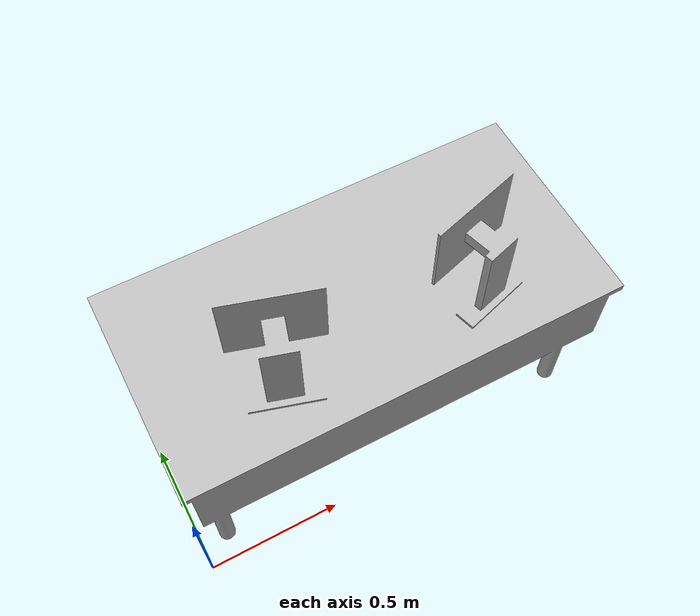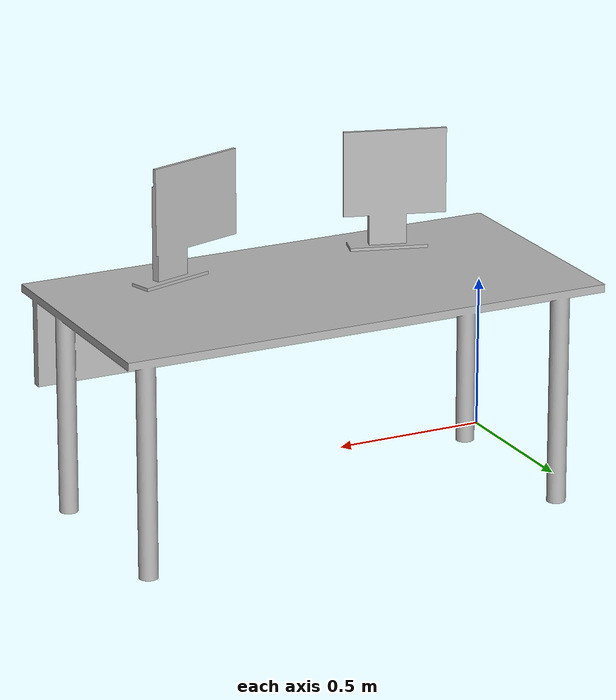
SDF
<?xml version="1.0" ?>
<sdf version="1.5">
  <model name="table_monitor">
    <static>true</static>
    <link name="link">
      <pose>0 0 0 0 0 0</pose>
      <collision name="collision">
        <geometry>
          <mesh>
            <uri>model://table_monitor/meshes/table_monitor.dae</uri>
          </mesh>
        </geometry>
      </collision>
      <visual name="visual">
        <geometry>
          <mesh>
            <uri>model://table_monitor/meshes/table_monitor.dae</uri>
          </mesh>
        </geometry>
      </visual>
    </link>
  </model>
</sdf>
